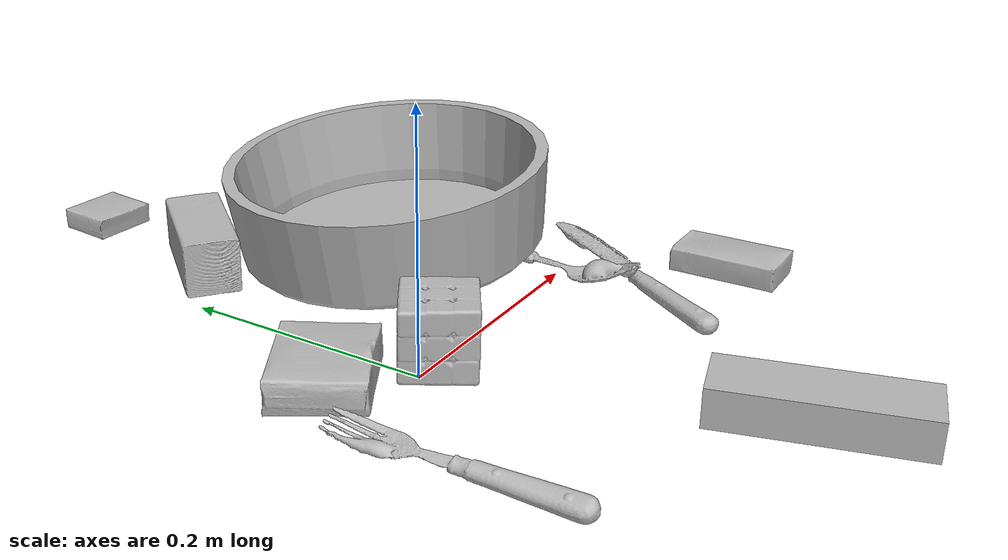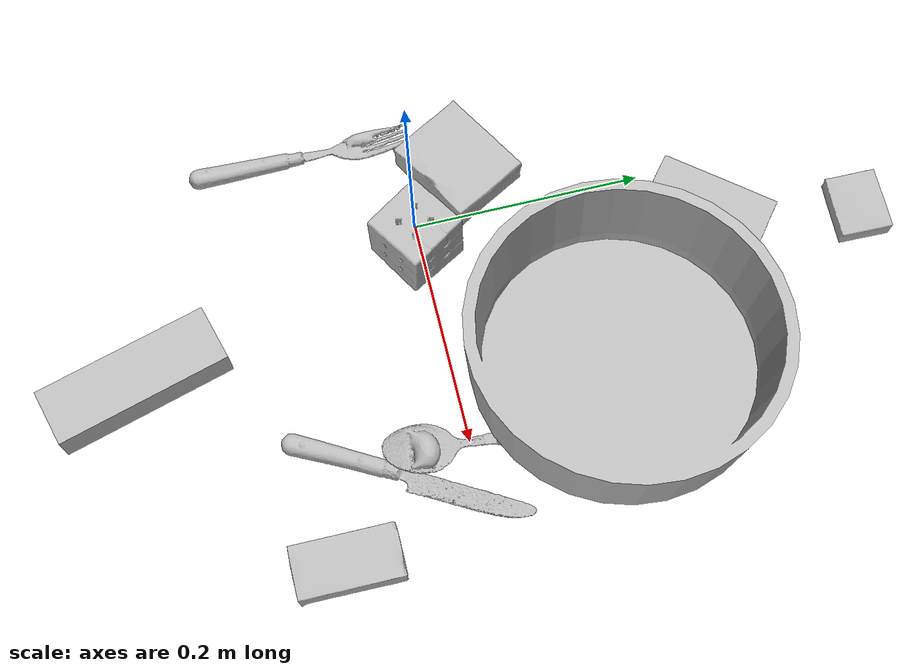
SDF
<sdf version="1.4">
  <world name="default">
    <light name="light1" type="point">
      <pose>0 0 1 0 0 0</pose>
      <diffuse>3 3 3 1</diffuse>
      <specular>3 3 3 1</specular>
    </light>
    <light name="light2" type="point">
      <pose>0 0.5 2 0 0 0</pose>
      <diffuse>1 1 1 1</diffuse>
      <specular>1 1 1 1</specular>
    </light>
    <light name="light3" type="point">
      <pose>0 0.5 2 0 0 0</pose>
      <diffuse>3 3 3 1</diffuse>
      <specular>3 3 3 1</specular>
    </light>
    <scene>
      <ambient>0.7 0.7 0.7</ambient>
    </scene>
    <model name="box11">
      <link name="link_box11">
        <collision name="default">
          <geometry>
            <mesh>
              <uri>model://jenga/collision_meshes/collision.obj</uri>
              <scale>1.0 1.0 1.0</scale>
            </mesh>
          </geometry>
          <surface>
            <friction>
              <ode>
                <mu>0.5</mu>
                <mu2>0.5</mu2>
              </ode>
            </friction>
          <contact>
        <ode>
            <max_vel>0</max_vel>
            <min_depth>0.0001</min_depth>
            <kp>1e8</kp>
        </ode>
    </contact></surface>
        </collision>
        <visual name="default">
          <geometry>
            <mesh>
              <uri>model://jenga/visual_meshes/visual.dae</uri>
              <scale>1.0 1.0 1.0</scale>
            </mesh>
          </geometry>
        </visual>
        <inertial>
          <mass>0.22063912451267242</mass>
          <pose>-2.502855807051674e-07 -0.00010250011109746993 -4.0923405322246253e-05 0.0 -7.34215461761844e-07 0.0</pose>
          <inertia>
            <ixx>6.1056206e-05</ixx>
            <iyy>0.00041371517</iyy>
            <izz>0.00044167612</izz>
            <ixy>0</ixy>
            <ixz>0</ixz>
            <iyz>0</iyz>
          </inertia>
        </inertial>
      </link>
      <pose>0.0877472534775734 -0.2557898163795471 0.014999994076788425 2.3623463635378222e-08 1.2694138185739786e-09 -1.2932966576155605</pose>
    </model>
    <model name="box12">
      <link name="link_box12">
        <collision name="default">
          <geometry>
            <mesh>
              <uri>model://sugar_box/collision_meshes/collision.obj</uri>
              <scale>0.5 0.5 0.5</scale>
            </mesh>
          </geometry>
          <surface>
            <friction>
              <ode>
                <mu>0.5</mu>
                <mu2>0.5</mu2>
              </ode>
            </friction>
          <contact>
        <ode>
            <max_vel>0</max_vel>
            <min_depth>0.0001</min_depth>
            <kp>1e8</kp>
        </ode>
    </contact></surface>
        </collision>
        <visual name="default">
          <geometry>
            <mesh>
              <uri>model://sugar_box/visual_meshes/visual.dae</uri>
              <scale>0.5 0.5 0.5</scale>
            </mesh>
          </geometry>
        </visual>
        <inertial>
          <mass>0.053318966180086136</mass>
          <pose>0.0005171863595023751 1.924554817378521e-05 -0.00018182402709499002 -0.00040462627129080113 0.001050663522124822 0.0026153787889376494</pose>
          <inertia>
            <ixx>1.1106302e-05</ixx>
            <iyy>3.5897858e-05</iyy>
            <izz>4.2974014e-05</izz>
            <ixy>0</ixy>
            <ixz>0</ixz>
            <iyz>0</iyz>
          </inertia>
        </inertial>
      </link>
      <pose>0.27677223086357117 -0.11756302416324615 0.011399304494261742 0.0007751508066291057 -0.023432533370557694 -1.576585960813186</pose>
    </model>
    <model name="box13">
      <link name="link_box13">
        <collision name="default">
          <geometry>
            <mesh>
              <uri>model://gelatin_box/collision_meshes/collision.obj</uri>
              <scale>1.0 1.0 1.0</scale>
            </mesh>
          </geometry>
          <surface>
            <friction>
              <ode>
                <mu>0.5</mu>
                <mu2>0.5</mu2>
              </ode>
            </friction>
          <contact>
        <ode>
            <max_vel>0</max_vel>
            <min_depth>0.0001</min_depth>
            <kp>1e8</kp>
        </ode>
    </contact></surface>
        </collision>
        <visual name="default">
          <geometry>
            <mesh>
              <uri>model://gelatin_box/visual_meshes/visual.dae</uri>
              <scale>1.0 1.0 1.0</scale>
            </mesh>
          </geometry>
        </visual>
        <inertial>
          <mass>0.19111748039722443</mass>
          <pose>0.0004319618456065655 0.00011156871914863586 -0.00036403207923285663 -0.0010503719765995955 -0.004755818690324038 0.01644055947160125</pose>
          <inertia>
            <ixx>0.00013491335</ixx>
            <iyy>9.63679e-05</iyy>
            <izz>0.00020536821</izz>
            <ixy>0</ixy>
            <ixz>0</ixz>
            <iyz>0</iyz>
          </inertia>
        </inertial>
      </link>
      <pose>-0.04458692669868469 0.048664286732673645 0.01516831573098898 0.005596677467284877 -0.007303682285750168 -1.0673571673678064</pose>
    </model>
    <model name="box21">
      <link name="link_box21">
        <collision name="default">
          <geometry>
            <mesh>
              <uri>model://pudding_box/collision_meshes/collision.obj</uri>
              <scale>0.5 0.5 0.5</scale>
            </mesh>
          </geometry>
          <surface>
            <friction>
              <ode>
                <mu>0.5</mu>
                <mu2>0.5</mu2>
              </ode>
            </friction>
          <contact>
        <ode>
            <max_vel>0</max_vel>
            <min_depth>0.0001</min_depth>
            <kp>1e8</kp>
        </ode>
    </contact></surface>
        </collision>
        <visual name="default">
          <geometry>
            <mesh>
              <uri>model://pudding_box/visual_meshes/visual.dae</uri>
              <scale>0.5 0.5 0.5</scale>
            </mesh>
          </geometry>
        </visual>
        <inertial>
          <mass>0.037507444620132446</mass>
          <pose>0.00024474109522998333 0.0004033942532259971 -0.0002594413817860186 0.00521310221980129 -0.006603800139852783 0.020079832606434308</pose>
          <inertia>
            <ixx>1.0600058e-05</ixx>
            <iyy>7.131795e-06</iyy>
            <izz>1.5653754e-05</izz>
            <ixy>0</ixy>
            <ixz>0</ixz>
            <iyz>0</iyz>
          </inertia>
        </inertial>
      </link>
      <pose>0.07689832895994186 0.3757922053337097 0.009862902574241161 0.022348510710066046 -0.01139168754827213 1.5382439803928476</pose>
    </model>
    <model name="box22">
      <link name="link_box22">
        <collision name="default">
          <geometry>
            <mesh>
              <uri>model://rubiks_cube/collision_meshes/collision.obj</uri>
              <scale>1.0 1.0 1.0</scale>
            </mesh>
          </geometry>
          <surface>
            <friction>
              <ode>
                <mu>0.5</mu>
                <mu2>0.5</mu2>
              </ode>
            </friction>
          <contact>
        <ode>
            <max_vel>0</max_vel>
            <min_depth>0.0001</min_depth>
            <kp>1e8</kp>
        </ode>
    </contact></surface>
        </collision>
        <visual name="default">
          <geometry>
            <mesh>
              <uri>model://rubiks_cube/visual_meshes/visual.dae</uri>
              <scale>1.0 1.0 1.0</scale>
            </mesh>
          </geometry>
        </visual>
        <inertial>
          <mass>0.19412381947040558</mass>
          <pose>2.6721041649580002e-05 5.2569666877388954e-05 -7.264316082000732e-06 -0.05467327462967597 -0.09814157667114887 -0.034454893398498845</pose>
          <inertia>
            <ixx>0.000107266445</ixx>
            <iyy>0.0001067662</iyy>
            <izz>0.00010815532</izz>
            <ixy>0</ixy>
            <ixz>0</ixz>
            <iyz>0</iyz>
          </inertia>
        </inertial>
      </link>
      <pose>0.021542541682720184 -0.003111740341410041 0.02867896854877472 -2.8364314290939737e-06 -7.644910926161348e-07 -1.0061932505985522</pose>
    </model>
    <model name="box23">
      <link name="link_box23">
        <collision name="default">
          <geometry>
            <mesh>
              <uri>model://wood_block/collision_meshes/collision.obj</uri>
              <scale>0.5 0.5 0.5</scale>
            </mesh>
          </geometry>
          <surface>
            <friction>
              <ode>
                <mu>0.5</mu>
                <mu2>0.5</mu2>
              </ode>
            </friction>
          <contact>
        <ode>
            <max_vel>0</max_vel>
            <min_depth>0.0001</min_depth>
            <kp>1e8</kp>
        </ode>
    </contact></surface>
        </collision>
        <visual name="default">
          <geometry>
            <mesh>
              <uri>model://wood_block/visual_meshes/visual.dae</uri>
              <scale>0.5 0.5 0.5</scale>
            </mesh>
          </geometry>
        </visual>
        <inertial>
          <mass>0.12021861970424652</mass>
          <pose>-2.9066577553749084e-06 -0.000285404734313488 0.00013204291462898254 -0.05220783851692058 -0.005192695246339916 -0.006861377900732038</pose>
          <inertia>
            <ixx>4.0217674e-05</ixx>
            <iyy>0.00012704768</iyy>
            <izz>0.00012657243</izz>
            <ixy>0</ixy>
            <ixz>0</ixz>
            <iyz>0</iyz>
          </inertia>
        </inertial>
      </link>
      <pose>0.05484328791499138 0.24546049535274506 0.022618291899561882 -0.003690706203126546 0.008215548672236186 -2.256724380233662</pose>
    </model>
    <model name="plate1">
      <link name="link_plate1">
        <collision name="default">
          <geometry>
            <mesh>
              <uri>model://pan_tefal/collision_meshes/collision.obj</uri>
              <scale>1.0 1.0 1.0</scale>
            </mesh>
          </geometry>
          <surface>
            <friction>
              <ode>
                <mu>0.5</mu>
                <mu2>0.5</mu2>
              </ode>
            </friction>
          <contact>
        <ode>
            <max_vel>0</max_vel>
            <min_depth>0.0001</min_depth>
            <kp>1e8</kp>
        </ode>
    </contact></surface>
        </collision>
        <visual name="default">
          <geometry>
            <mesh>
              <uri>model://pan_tefal/visual_meshes/visual.dae</uri>
              <scale>1.0 1.0 1.0</scale>
            </mesh>
          </geometry>
        </visual>
        <inertial>
          <mass>1.1174349784851074</mass>
          <pose>-0.0001800186582840979 3.278696021880023e-05 -0.00851493701338768 0.0008190242272949328 -0.00033013996347192336 -0.33186114310704434</pose>
          <inertia>
            <ixx>0.0077136005</ixx>
            <iyy>0.0077633304</iyy>
            <izz>0.014199255</izz>
            <ixy>0</ixy>
            <ixz>0</ixz>
            <iyz>0</iyz>
          </inertia>
        </inertial>
      </link>
      <pose>0.16378462314605713 0.13751201331615448 0.04735298082232475 -0.05370080067282389 -0.0678493388876116 0.01976379433811221</pose>
    </model>
    <model name="silverware1">
      <link name="link_silverware1">
        <collision name="default">
          <geometry>
            <mesh>
              <uri>model://spoon/collision_meshes/collision.obj</uri>
              <scale>1.0 1.0 1.0</scale>
            </mesh>
          </geometry>
          <surface>
            <friction>
              <ode>
                <mu>0.5</mu>
                <mu2>0.5</mu2>
              </ode>
            </friction>
          <contact>
        <ode>
            <max_vel>0</max_vel>
            <min_depth>0.0001</min_depth>
            <kp>1e8</kp>
        </ode>
    </contact></surface>
        </collision>
        <visual name="default">
          <geometry>
            <mesh>
              <uri>model://spoon/visual_meshes/visual.dae</uri>
              <scale>1.0 1.0 1.0</scale>
            </mesh>
          </geometry>
        </visual>
        <inertial>
          <mass>0.03790392354130745</mass>
          <pose>-0.005526311695575714 -0.0016034170985221863 -0.0007271655485965312 0.03521845899657386 -0.039065840459698326 0.006150612465639116</pose>
          <inertia>
            <ixx>2.1082776e-06</ixx>
            <iyy>0.00014422317</iyy>
            <izz>0.00014526285</izz>
            <ixy>0</ixy>
            <ixz>0</ixz>
            <iyz>0</iyz>
          </inertia>
        </inertial>
      </link>
      <pose>0.2057914137840271 0.023877955973148346 0.009538154117763042 -0.05442092549008431 -0.005577211955732651 -1.6381937309641739</pose>
    </model>
    <model name="silverware2">
      <link name="link_silverware2">
        <collision name="default">
          <geometry>
            <mesh>
              <uri>model://fork/collision_meshes/collision.obj</uri>
              <scale>1.0 1.0 1.0</scale>
            </mesh>
          </geometry>
          <surface>
            <friction>
              <ode>
                <mu>0.5</mu>
                <mu2>0.5</mu2>
              </ode>
            </friction>
          <contact>
        <ode>
            <max_vel>0</max_vel>
            <min_depth>0.0001</min_depth>
            <kp>1e8</kp>
        </ode>
    </contact></surface>
        </collision>
        <visual name="default">
          <geometry>
            <mesh>
              <uri>model://fork/visual_meshes/visual.dae</uri>
              <scale>1.0 1.0 1.0</scale>
            </mesh>
          </geometry>
        </visual>
        <inertial>
          <mass>0.029004188254475594</mass>
          <pose>-0.02957005612552166 0.0004658824182115495 0.00032188621116802096 -0.013551880215526314 -0.010977843078655252 0.014453906566097012</pose>
          <inertia>
            <ixx>1.0167608e-06</ixx>
            <iyy>7.572158e-05</iyy>
            <izz>7.617634e-05</izz>
            <ixy>0</ixy>
            <ixz>0</ixz>
            <iyz>0</iyz>
          </inertia>
        </inertial>
      </link>
      <pose>-0.08595383167266846 -0.08409155160188675 0.005674673244357109 -0.17461741051531873 0.02560457807362027 1.5661665468529493</pose>
    </model>
    <model name="silverware3">
      <link name="link_silverware3">
        <collision name="default">
          <geometry>
            <mesh>
              <uri>model://knife/collision_meshes/collision.obj</uri>
              <scale>1.0 1.0 1.0</scale>
            </mesh>
          </geometry>
          <surface>
            <friction>
              <ode>
                <mu>0.5</mu>
                <mu2>0.5</mu2>
              </ode>
            </friction>
          <contact>
        <ode>
            <max_vel>0</max_vel>
            <min_depth>0.0001</min_depth>
            <kp>1e8</kp>
        </ode>
    </contact></surface>
        </collision>
        <visual name="default">
          <geometry>
            <mesh>
              <uri>model://knife/visual_meshes/visual.dae</uri>
              <scale>1.0 1.0 1.0</scale>
            </mesh>
          </geometry>
        </visual>
        <inertial>
          <mass>0.015800314024090767</mass>
          <pose>-0.023785250261425972 0.0015275126788765192 5.0620288675418124e-05 0.07305498599936577 0.01724841842216061 -0.0074098211805850795</pose>
          <inertia>
            <ixx>4.48477e-07</ixx>
            <iyy>6.0702252e-05</iyy>
            <izz>6.0846694e-05</izz>
            <ixy>0</ixy>
            <ixz>0</ixz>
            <iyz>0</iyz>
          </inertia>
        </inertial>
      </link>
      <pose>0.22044357657432556 -0.0572684183716774 0.007946576923131943 -0.0238359720988261 -0.014543206450110336 1.0402530953523923</pose>
    </model>
  <physics type="ode">
      <max_contacts>50</max_contacts>
      <ode>
        <solver>
          <type>quick</type>
          <iters>75</iters>
        </solver>
        <constraints>
          <contact_max_correcting_vel>0</contact_max_correcting_vel>
          <contact_surface_layer>0</contact_surface_layer>
        </constraints>
      </ode>
    </physics></world>
</sdf>
